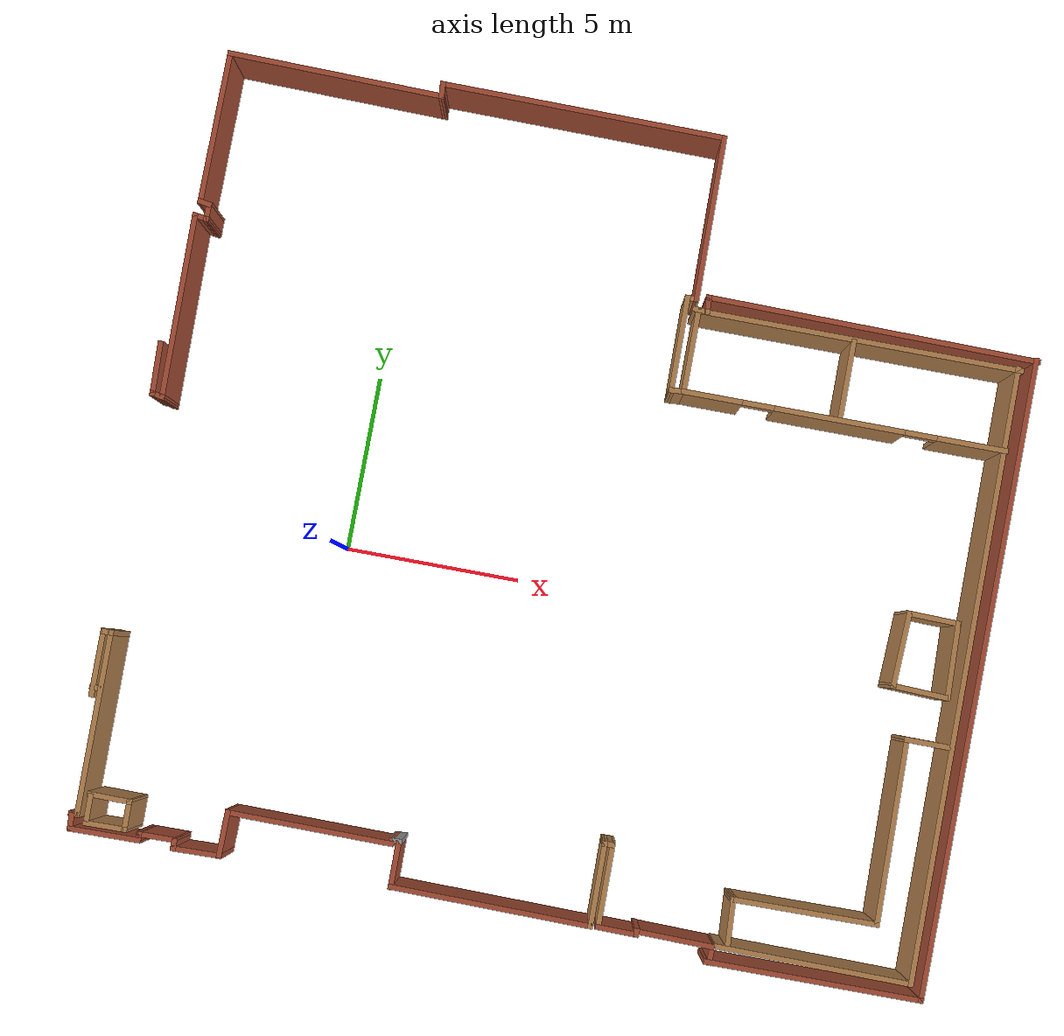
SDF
<sdf version="1.7">
 <world name="empty_world">
  <model name="my_floor">
   <pose>-0.708738 1.92561 0 0 -0 0</pose>
   <link name="Wall_100">
    <collision name="Wall_100_Collision">
     <geometry><box><size>1.2289 0.15 2.5</size></box></geometry>
     <pose>0 0 1.25 0 -0 0</pose>
    </collision>
    <visual name="Wall_100_Visual">
     <pose>0 0 1.25 0 -0 0</pose>
     <geometry><box><size>1.2289 0.15 2.5</size></box></geometry>
     <material>
      <script><uri>file://media/materials/scripts/gazebo.material</uri><name>Gazebo/Wood</name></script>
      <ambient>1 1 1 1</ambient>
     </material>
     <meta><layer>0</layer></meta>
    </visual>
    <pose>-4.18649 -10.7209 0 0 -0 -3.12644</pose>
   </link>
   <link name="Wall_101">
    <collision name="Wall_101_Collision">
     <geometry><box><size>0.895451 0.15 2.5</size></box></geometry>
     <pose>0 0 1.25 0 -0 0</pose>
    </collision>
    <visual name="Wall_101_Visual">
     <pose>0 0 1.25 0 -0 0</pose>
     <geometry><box><size>0.895451 0.15 2.5</size></box></geometry>
     <material>
      <script><uri>file://media/materials/scripts/gazebo.material</uri><name>Gazebo/Wood</name></script>
      <ambient>1 1 1 1</ambient>
     </material>
     <meta><layer>0</layer></meta>
    </visual>
    <pose>-4.73242 -10.3564 0 0 -0 1.58834</pose>
   </link>
   <link name="Wall_103">
    <collision name="Wall_103_Collision">
     <geometry><box><size>5.21545 0.15 2.5</size></box></geometry>
     <pose>0 0 1.25 0 -0 0</pose>
    </collision>
    <visual name="Wall_103_Visual">
     <pose>0 0 1.25 0 -0 0</pose>
     <geometry><box><size>5.21545 0.15 2.5</size></box></geometry>
     <material>
      <script><uri>file://media/materials/scripts/gazebo.material</uri><name>Gazebo/Wood</name></script>
      <ambient>1 1 1 1</ambient>
     </material>
     <meta><layer>0</layer></meta>
    </visual>
    <pose>-5.03494 -8.01189 0 0 -0 1.58124</pose>
   </link>
   <link name="Wall_105">
    <collision name="Wall_105_Collision">
     <geometry><box><size>0.334792 0.15 2.5</size></box></geometry>
     <pose>0 0 1.25 0 -0 0</pose>
    </collision>
    <visual name="Wall_105_Visual">
     <pose>0 0 1.25 0 -0 0</pose>
     <geometry><box><size>0.334792 0.15 2.5</size></box></geometry>
     <material>
      <script><uri>file://media/materials/scripts/gazebo.material</uri><name>Gazebo/Wood</name></script>
      <ambient>1 1 1 1</ambient>
     </material>
     <meta><layer>0</layer></meta>
    </visual>
    <pose>-5.15008 -5.4634 0 0 -0 -3.12621</pose>
   </link>
   <link name="Wall_107">
    <collision name="Wall_107_Collision">
     <geometry><box><size>1.93127 0.15 2.5</size></box></geometry>
     <pose>0 0 1.25 0 -0 0</pose>
    </collision>
    <visual name="Wall_107_Visual">
     <pose>0 0 1.25 0 -0 0</pose>
     <geometry><box><size>1.93127 0.15 2.5</size></box></geometry>
     <material>
      <script><uri>file://media/materials/scripts/gazebo.material</uri><name>Gazebo/Wood</name></script>
      <ambient>1 1 1 1</ambient>
     </material>
     <meta><layer>0</layer></meta>
    </visual>
    <pose>-5.26553 -6.34786 0 0 -0 -1.56109</pose>
   </link>
   <link name="Wall_109">
    <collision name="Wall_109_Collision">
     <geometry><box><size>0.315671 0.15 2.5</size></box></geometry>
     <pose>0 0 1.25 0 -0 0</pose>
    </collision>
    <visual name="Wall_109_Visual">
     <pose>0 0 1.25 0 -0 0</pose>
     <geometry><box><size>0.315671 0.15 2.5</size></box></geometry>
     <material>
      <script><uri>file://media/materials/scripts/gazebo.material</uri><name>Gazebo/Wood</name></script>
      <ambient>1 1 1 1</ambient>
     </material>
     <meta><layer>0</layer></meta>
    </visual>
    <pose>-5.1931 -7.03195 0 0 -0 3.12224</pose>
   </link>
   <link name="Wall_128">
    <collision name="Wall_128_Collision">
     <geometry><box><size>2.23103 0.15 2.5</size></box></geometry>
     <pose>0 0 1.25 0 -0 0</pose>
    </collision>
    <visual name="Wall_128_Visual">
     <pose>0 0 1.25 0 -0 0</pose>
     <geometry><box><size>2.23103 0.15 2.5</size></box></geometry>
     <material>
      <script><uri>file://media/materials/scripts/gazebo.material</uri><name>Gazebo/Wood</name></script>
      <ambient>1 1 1 1</ambient>
     </material>
     <meta><layer>0</layer></meta>
    </visual>
    <pose>17.993 -1.97873 0 0 -0 -1.54139</pose>
   </link>
   <link name="Wall_129">
    <collision name="Wall_129_Collision">
     <geometry><box><size>1.68074 0.15 2.5</size></box></geometry>
     <pose>0 0 1.25 0 -0 0</pose>
    </collision>
    <visual name="Wall_129_Visual">
     <pose>0 0 1.25 0 -0 0</pose>
     <geometry><box><size>1.68074 0.15 2.5</size></box></geometry>
     <material>
      <script><uri>file://media/materials/scripts/gazebo.material</uri><name>Gazebo/Wood</name></script>
      <ambient>1 1 1 1</ambient>
     </material>
     <meta><layer>0</layer></meta>
    </visual>
    <pose>17.2589 -2.98821 0 0 -0 3.10161</pose>
   </link>
   <link name="Wall_130">
    <collision name="Wall_130_Collision">
     <geometry><box><size>2.2016 0.15 2.5</size></box></geometry>
     <pose>0 0 1.25 0 -0 0</pose>
    </collision>
    <visual name="Wall_130_Visual">
     <pose>0 0 1.25 0 -0 0</pose>
     <geometry><box><size>2.2016 0.15 2.5</size></box></geometry>
     <material>
      <script><uri>file://media/materials/scripts/gazebo.material</uri><name>Gazebo/Wood</name></script>
      <ambient>1 1 1 1</ambient>
     </material>
     <meta><layer>0</layer></meta>
    </visual>
    <pose>16.54 -1.93285 0 0 -0 1.52605</pose>
   </link>
   <link name="Wall_131">
    <collision name="Wall_131_Collision">
     <geometry><box><size>1.5269 0.15 2.5</size></box></geometry>
     <pose>0 0 1.25 0 -0 0</pose>
    </collision>
    <visual name="Wall_131_Visual">
     <pose>0 0 1.25 0 -0 0</pose>
     <geometry><box><size>1.5269 0.15 2.5</size></box></geometry>
     <material>
      <script><uri>file://media/materials/scripts/gazebo.material</uri><name>Gazebo/Wood</name></script>
      <ambient>1 1 1 1</ambient>
     </material>
     <meta><layer>0</layer></meta>
    </visual>
    <pose>17.2742 -0.923369 0 0 -0 -0.022219</pose>
   </link>
   <link name="Wall_133">
    <collision name="Wall_133_Collision">
     <geometry><box><size>1.39905 0.15 2.5</size></box></geometry>
     <pose>0 0 1.25 0 -0 0</pose>
    </collision>
    <visual name="Wall_133_Visual">
     <pose>0 0 1.25 0 -0 0</pose>
     <geometry><box><size>1.39905 0.15 2.5</size></box></geometry>
     <material>
      <script><uri>file://media/materials/scripts/gazebo.material</uri><name>Gazebo/Wood</name></script>
      <ambient>1 1 1 1</ambient>
     </material>
     <meta><layer>0</layer></meta>
    </visual>
    <pose>17.7418 -4.35062 0 0 -0 3.14159</pose>
   </link>
   <link name="Wall_134">
    <collision name="Wall_134_Collision">
     <geometry><box><size>5.28546 0.15 2.5</size></box></geometry>
     <pose>0 0 1.25 0 -0 0</pose>
    </collision>
    <visual name="Wall_134_Visual">
     <pose>0 0 1.25 0 -0 0</pose>
     <geometry><box><size>5.28546 0.15 2.5</size></box></geometry>
     <material>
      <script><uri>file://media/materials/scripts/gazebo.material</uri><name>Gazebo/Wood</name></script>
      <ambient>1 1 1 1</ambient>
     </material>
     <meta><layer>0</layer></meta>
    </visual>
    <pose>17.1519 -6.91811 0 0 -0 -1.55728</pose>
   </link>
   <link name="Wall_135">
    <collision name="Wall_135_Collision">
     <geometry><box><size>4.15186 0.15 2.5</size></box></geometry>
     <pose>0 0 1.25 0 -0 0</pose>
    </collision>
    <visual name="Wall_135_Visual">
     <pose>0 0 1.25 0 -0 0</pose>
     <geometry><box><size>4.15186 0.15 2.5</size></box></geometry>
     <material>
      <script><uri>file://media/materials/scripts/gazebo.material</uri><name>Gazebo/Wood</name></script>
      <ambient>1 1 1 1</ambient>
     </material>
     <meta><layer>0</layer></meta>
    </visual>
    <pose>15.1858 -9.50874 0 0 -0 -3.13003</pose>
   </link>
   <link name="Wall_136">
    <collision name="Wall_136_Collision">
     <geometry><box><size>1.42407 0.15 2.5</size></box></geometry>
     <pose>0 0 1.25 0 -0 0</pose>
    </collision>
    <visual name="Wall_136_Visual">
     <pose>0 0 1.25 0 -0 0</pose>
     <geometry><box><size>1.42407 0.15 2.5</size></box></geometry>
     <material>
      <script><uri>file://media/materials/scripts/gazebo.material</uri><name>Gazebo/Wood</name></script>
      <ambient>1 1 1 1</ambient>
     </material>
     <meta><layer>0</layer></meta>
    </visual>
    <pose>13.2197 -10.168 0 0 -0 -1.51631</pose>
   </link>
   <link name="Wall_142">
    <pose>13.8818 4.03162 0 0 -0 0</pose>
    <visual name="Wall_142_Visual_0">
     <pose>-3.75662 0 1.25 0 -0 0</pose>
     <geometry><box><size>1.73677 0.15 2.5</size></box></geometry>
     <material>
      <script><uri>file://media/materials/scripts/gazebo.material</uri><name>Gazebo/Wood</name></script>
      <ambient>1 1 1 1</ambient>
     </material>
     <meta><layer>0</layer></meta>
    </visual>
    <collision name="Wall_142_Collision_0">
     <geometry><box><size>1.73677 0.15 2.5</size></box></geometry>
     <pose>-3.75662 0 1.25 0 -0 0</pose>
    </collision>
    <visual name="Wall_142_Visual_1">
     <pose>-0.137622 0 1.25 0 -0 0</pose>
     <geometry><box><size>3.70121 0.15 2.5</size></box></geometry>
     <material>
      <script><uri>file://media/materials/scripts/gazebo.material</uri><name>Gazebo/Wood</name></script>
      <ambient>1 1 1 1</ambient>
     </material>
     <meta><layer>0</layer></meta>
    </visual>
    <collision name="Wall_142_Collision_1">
     <geometry><box><size>3.70121 0.15 2.5</size></box></geometry>
     <pose>-0.137622 0 1.25 0 -0 0</pose>
    </collision>
    <visual name="Wall_142_Visual_2">
     <pose>3.61899 0 1.25 0 -0 0</pose>
     <geometry><box><size>2.01201 0.15 2.5</size></box></geometry>
     <material>
      <script><uri>file://media/materials/scripts/gazebo.material</uri><name>Gazebo/Wood</name></script>
      <ambient>1 1 1 1</ambient>
     </material>
     <meta><layer>0</layer></meta>
    </visual>
    <collision name="Wall_142_Collision_2">
     <geometry><box><size>2.01201 0.15 2.5</size></box></geometry>
     <pose>3.61899 0 1.25 0 -0 0</pose>
    </collision>
    <visual name="Wall_142_Visual_3">
     <pose>-2.43823 0 2.25 0 -0 0</pose>
     <geometry><box><size>0.9 0.15 0.5</size></box></geometry>
     <material>
      <script><uri>file://media/materials/scripts/gazebo.material</uri><name>Gazebo/Wood</name></script>
      <ambient>1 1 1 1</ambient>
     </material>
     <meta><layer>0</layer></meta>
    </visual>
    <collision name="Wall_142_Collision_3">
     <geometry><box><size>0.9 0.15 0.5</size></box></geometry>
     <pose>-2.43823 0 2.25 0 -0 0</pose>
    </collision>
    <visual name="Wall_142_Visual_4">
     <pose>2.16298 0 2.25 0 -0 0</pose>
     <geometry><box><size>0.9 0.15 0.5</size></box></geometry>
     <material>
      <script><uri>file://media/materials/scripts/gazebo.material</uri><name>Gazebo/Wood</name></script>
      <ambient>1 1 1 1</ambient>
     </material>
     <meta><layer>0</layer></meta>
    </visual>
    <collision name="Wall_142_Collision_4">
     <geometry><box><size>0.9 0.15 0.5</size></box></geometry>
     <pose>2.16298 0 2.25 0 -0 0</pose>
    </collision>
   </link>
   <link name="Wall_144">
    <collision name="Wall_144_Collision">
     <geometry><box><size>2.25 0.15 2.5</size></box></geometry>
     <pose>0 0 1.25 0 -0 0</pose>
    </collision>
    <visual name="Wall_144_Visual">
     <pose>0 0 1.25 0 -0 0</pose>
     <geometry><box><size>2.25 0.15 2.5</size></box></geometry>
     <material>
      <script><uri>file://media/materials/scripts/gazebo.material</uri><name>Gazebo/Wood</name></script>
      <ambient>1 1 1 1</ambient>
     </material>
     <meta><layer>0</layer></meta>
    </visual>
    <pose>13.7442 5.22429 0 0 -0 1.5708</pose>
   </link>
   <link name="Wall_39">
    <collision name="Wall_39_Collision">
     <geometry><box><size>1.56173 0.15 2.5</size></box></geometry>
     <pose>0 0 1.25 0 -0 0</pose>
    </collision>
    <visual name="Wall_39_Visual">
     <pose>0 0 1.25 0 -0 0</pose>
     <geometry><box><size>1.56173 0.15 2.5</size></box></geometry>
     <material>
      <script><uri>file://media/materials/scripts/gazebo.material</uri><name>Gazebo/Bricks</name></script>
      <ambient>1 1 1 1</ambient>
     </material>
     <meta><layer>0</layer></meta>
    </visual>
    <pose>-5.24049 1.98456 0 0 -0 -1.53802</pose>
   </link>
   <link name="Wall_40">
    <collision name="Wall_40_Collision">
     <geometry><box><size>0.431396 0.15 2.5</size></box></geometry>
     <pose>0 0 1.25 0 -0 0</pose>
    </collision>
    <visual name="Wall_40_Visual">
     <pose>0 0 1.25 0 -0 0</pose>
     <geometry><box><size>0.431396 0.15 2.5</size></box></geometry>
     <material>
      <script><uri>file://media/materials/scripts/gazebo.material</uri><name>Gazebo/Bricks</name></script>
      <ambient>1 1 1 1</ambient>
     </material>
     <meta><layer>0</layer></meta>
    </visual>
    <pose>-5.07858 1.25595 0 0 -0 -0.165149</pose>
   </link>
   <link name="Wall_41">
    <collision name="Wall_41_Collision">
     <geometry><box><size>5.33172 0.15 2.5</size></box></geometry>
     <pose>0 0 1.25 0 -0 0</pose>
    </collision>
    <visual name="Wall_41_Visual">
     <pose>0 0 1.25 0 -0 0</pose>
     <geometry><box><size>5.33172 0.15 2.5</size></box></geometry>
     <material>
      <script><uri>file://media/materials/scripts/gazebo.material</uri><name>Gazebo/Bricks</name></script>
      <ambient>1 1 1 1</ambient>
     </material>
     <meta><layer>0</layer></meta>
    </visual>
    <pose>-4.97449 3.82345 0 0 -0 1.58419</pose>
   </link>
   <link name="Wall_42">
    <collision name="Wall_42_Collision">
     <geometry><box><size>0.477116 0.15 2.5</size></box></geometry>
     <pose>0 0 1.25 0 -0 0</pose>
    </collision>
    <visual name="Wall_42_Visual">
     <pose>0 0 1.25 0 -0 0</pose>
     <geometry><box><size>0.477116 0.15 2.5</size></box></geometry>
     <material>
      <script><uri>file://media/materials/scripts/gazebo.material</uri><name>Gazebo/Bricks</name></script>
      <ambient>1 1 1 1</ambient>
     </material>
     <meta><layer>0</layer></meta>
    </visual>
    <pose>-4.84727 6.39094 0 0 -0 -0.141897</pose>
   </link>
   <link name="Wall_43">
    <collision name="Wall_43_Collision">
     <geometry><box><size>0.566351 0.15 2.5</size></box></geometry>
     <pose>0 0 1.25 0 -0 0</pose>
    </collision>
    <visual name="Wall_43_Visual">
     <pose>0 0 1.25 0 -0 0</pose>
     <geometry><box><size>0.566351 0.15 2.5</size></box></geometry>
     <material>
      <script><uri>file://media/materials/scripts/gazebo.material</uri><name>Gazebo/Bricks</name></script>
      <ambient>1 1 1 1</ambient>
     </material>
     <meta><layer>0</layer></meta>
    </visual>
    <pose>-4.68536 6.57599 0 0 -0 1.5708</pose>
   </link>
   <link name="Wall_44">
    <collision name="Wall_44_Collision">
     <geometry><box><size>0.408608 0.15 2.5</size></box></geometry>
     <pose>0 0 1.25 0 -0 0</pose>
    </collision>
    <visual name="Wall_44_Visual">
     <pose>0 0 1.25 0 -0 0</pose>
     <geometry><box><size>0.408608 0.15 2.5</size></box></geometry>
     <material>
      <script><uri>file://media/materials/scripts/gazebo.material</uri><name>Gazebo/Bricks</name></script>
      <ambient>1 1 1 1</ambient>
     </material>
     <meta><layer>0</layer></meta>
    </visual>
    <pose>-4.81258 6.80729 0 0 -0 2.96174</pose>
   </link>
   <link name="Wall_45">
    <collision name="Wall_45_Collision">
     <geometry><box><size>4.42922 0.15 2.5</size></box></geometry>
     <pose>0 0 1.25 0 -0 0</pose>
    </collision>
    <visual name="Wall_45_Visual">
     <pose>0 0 1.25 0 -0 0</pose>
     <geometry><box><size>4.42922 0.15 2.5</size></box></geometry>
     <material>
      <script><uri>file://media/materials/scripts/gazebo.material</uri><name>Gazebo/Bricks</name></script>
      <ambient>1 1 1 1</ambient>
     </material>
     <meta><layer>0</layer></meta>
    </visual>
    <pose>-4.92823 8.97001 0 0 -0 1.56539</pose>
   </link>
   <link name="Wall_46">
    <collision name="Wall_46_Collision">
     <geometry><box><size>6.21132 0.15 2.5</size></box></geometry>
     <pose>0 0 1.25 0 -0 0</pose>
    </collision>
    <visual name="Wall_46_Visual">
     <pose>0 0 1.25 0 -0 0</pose>
     <geometry><box><size>6.21132 0.15 2.5</size></box></geometry>
     <material>
      <script><uri>file://media/materials/scripts/gazebo.material</uri><name>Gazebo/Bricks</name></script>
      <ambient>1 1 1 1</ambient>
     </material>
     <meta><layer>0</layer></meta>
    </visual>
    <pose>-1.88655 11.0518 0 0 -0 -0.019082</pose>
   </link>
   <link name="Wall_47">
    <collision name="Wall_47_Collision">
     <geometry><box><size>0.497729 0.15 2.5</size></box></geometry>
     <pose>0 0 1.25 0 -0 0</pose>
    </collision>
    <visual name="Wall_47_Visual">
     <pose>0 0 1.25 0 -0 0</pose>
     <geometry><box><size>0.497729 0.15 2.5</size></box></geometry>
     <material>
      <script><uri>file://media/materials/scripts/gazebo.material</uri><name>Gazebo/Bricks</name></script>
      <ambient>1 1 1 1</ambient>
     </material>
     <meta><layer>0</layer></meta>
    </visual>
    <pose>1.13199 11.1674 0 0 -0 1.63736</pose>
   </link>
   <link name="Wall_48">
    <collision name="Wall_48_Collision">
     <geometry><box><size>8.19998 0.15 2.5</size></box></geometry>
     <pose>0 0 1.25 0 -0 0</pose>
    </collision>
    <visual name="Wall_48_Visual">
     <pose>0 0 1.25 0 -0 0</pose>
     <geometry><box><size>8.19998 0.15 2.5</size></box></geometry>
     <material>
      <script><uri>file://media/materials/scripts/gazebo.material</uri><name>Gazebo/Bricks</name></script>
      <ambient>1 1 1 1</ambient>
     </material>
     <meta><layer>0</layer></meta>
    </visual>
    <pose>5.14515 11.3062 0 0 -0 -0.00862</pose>
   </link>
   <link name="Wall_49">
    <collision name="Wall_49_Collision">
     <geometry><box><size>4.77635 0.15 2.5</size></box></geometry>
     <pose>0 0 1.25 0 -0 0</pose>
    </collision>
    <visual name="Wall_49_Visual">
     <pose>0 0 1.25 0 -0 0</pose>
     <geometry><box><size>4.77635 0.15 2.5</size></box></geometry>
     <material>
      <script><uri>file://media/materials/scripts/gazebo.material</uri><name>Gazebo/Bricks</name></script>
      <ambient>1 1 1 1</ambient>
     </material>
     <meta><layer>0</layer></meta>
    </visual>
    <pose>9.19301 8.95844 0 0 -0 -1.5608</pose>
   </link>
   <link name="Wall_50">
    <collision name="Wall_50_Collision">
     <geometry><box><size>0.404437 0.15 2.5</size></box></geometry>
     <pose>0 0 1.25 0 -0 0</pose>
    </collision>
    <visual name="Wall_50_Visual">
     <pose>0 0 1.25 0 -0 0</pose>
     <geometry><box><size>0.404437 0.15 2.5</size></box></geometry>
     <material>
      <script><uri>file://media/materials/scripts/gazebo.material</uri><name>Gazebo/Wood</name></script>
      <ambient>1 1 1 1</ambient>
     </material>
     <meta><layer>0</layer></meta>
    </visual>
    <pose>9.08892 6.64538 0 0 -0 3.14159</pose>
   </link>
   <link name="Wall_51">
    <collision name="Wall_51_Collision">
     <geometry><box><size>2.78699 0.15 2.5</size></box></geometry>
     <pose>0 0 1.25 0 -0 0</pose>
    </collision>
    <visual name="Wall_51_Visual">
     <pose>0 0 1.25 0 -0 0</pose>
     <geometry><box><size>2.78699 0.15 2.5</size></box></geometry>
     <material>
      <script><uri>file://media/materials/scripts/gazebo.material</uri><name>Gazebo/Wood</name></script>
      <ambient>1 1 1 1</ambient>
     </material>
     <meta><layer>0</layer></meta>
    </visual>
    <pose>8.97327 5.32694 0 0 -0 -1.56202</pose>
   </link>
   <link name="Wall_52">
    <collision name="Wall_52_Collision">
     <geometry><box><size>0.497729 0.15 2.5</size></box></geometry>
     <pose>0 0 1.25 0 -0 0</pose>
    </collision>
    <visual name="Wall_52_Visual">
     <pose>0 0 1.25 0 -0 0</pose>
     <geometry><box><size>0.497729 0.15 2.5</size></box></geometry>
     <material>
      <script><uri>file://media/materials/scripts/gazebo.material</uri><name>Gazebo/Wood</name></script>
      <ambient>1 1 1 1</ambient>
     </material>
     <meta><layer>0</layer></meta>
    </visual>
    <pose>9.15831 4.02006 0 0 -0 0.066568</pose>
   </link>
   <link name="Wall_53">
    <collision name="Wall_53_Collision">
     <geometry><box><size>2.48619 0.15 2.5</size></box></geometry>
     <pose>0 0 1.25 0 -0 0</pose>
    </collision>
    <visual name="Wall_53_Visual">
     <pose>0 0 1.25 0 -0 0</pose>
     <geometry><box><size>2.48619 0.15 2.5</size></box></geometry>
     <material>
      <script><uri>file://media/materials/scripts/gazebo.material</uri><name>Gazebo/Wood</name></script>
      <ambient>1 1 1 1</ambient>
     </material>
     <meta><layer>0</layer></meta>
    </visual>
    <pose>9.33179 5.19972 0 0 -0 1.5708</pose>
   </link>
   <link name="Wall_55">
    <collision name="Wall_55_Collision">
     <geometry><box><size>0.482771 0.15 2.5</size></box></geometry>
     <pose>0 0 1.25 0 -0 0</pose>
    </collision>
    <visual name="Wall_55_Visual">
     <pose>0 0 1.25 0 -0 0</pose>
     <geometry><box><size>0.482771 0.15 2.5</size></box></geometry>
     <material>
      <script><uri>file://media/materials/scripts/gazebo.material</uri><name>Gazebo/Wood</name></script>
      <ambient>1 1 1 1</ambient>
     </material>
     <meta><layer>0</layer></meta>
    </visual>
    <pose>9.40197 6.36454 0 0 -0 -0.052583</pose>
   </link>
   <link name="Wall_56">
    <collision name="Wall_56_Collision">
     <geometry><box><size>0.552651 0.15 2.5</size></box></geometry>
     <pose>0 0 1.25 0 -0 0</pose>
    </collision>
    <visual name="Wall_56_Visual">
     <pose>0 0 1.25 0 -0 0</pose>
     <geometry><box><size>0.552651 0.15 2.5</size></box></geometry>
     <material>
      <script><uri>file://media/materials/scripts/gazebo.material</uri><name>Gazebo/Bricks</name></script>
      <ambient>1 1 1 1</ambient>
     </material>
     <meta><layer>0</layer></meta>
    </visual>
    <pose>9.55938 6.55693 0 0 -0 1.61425</pose>
   </link>
   <link name="Wall_57">
    <collision name="Wall_57_Collision">
     <geometry><box><size>9.49028 0.15 2.5</size></box></geometry>
     <pose>0 0 1.25 0 -0 0</pose>
    </collision>
    <visual name="Wall_57_Visual">
     <pose>0 0 1.25 0 -0 0</pose>
     <geometry><box><size>9.49028 0.15 2.5</size></box></geometry>
     <material>
      <script><uri>file://media/materials/scripts/gazebo.material</uri><name>Gazebo/Bricks</name></script>
      <ambient>1 1 1 1</ambient>
     </material>
     <meta><layer>0</layer></meta>
    </visual>
    <pose>14.2205 6.70559 0 0 -0 -0.011235</pose>
   </link>
   <link name="Wall_59">
    <collision name="Wall_59_Collision">
     <geometry><box><size>9.22736 0.15 2.5</size></box></geometry>
     <pose>0 0 1.25 0 -0 0</pose>
    </collision>
    <visual name="Wall_59_Visual">
     <pose>0 0 1.25 0 -0 0</pose>
     <geometry><box><size>9.22736 0.15 2.5</size></box></geometry>
     <material>
      <script><uri>file://media/materials/scripts/gazebo.material</uri><name>Gazebo/Wood</name></script>
      <ambient>1 1 1 1</ambient>
     </material>
     <meta><layer>0</layer></meta>
    </visual>
    <pose>13.9319 6.32956 0 0 -0 -0.001927</pose>
   </link>
   <link name="Wall_61">
    <collision name="Wall_61_Collision">
     <geometry><box><size>17.4228 0.15 2.5</size></box></geometry>
     <pose>0 0 1.25 0 -0 0</pose>
    </collision>
    <visual name="Wall_61_Visual">
     <pose>0 0 1.25 0 -0 0</pose>
     <geometry><box><size>17.4228 0.15 2.5</size></box></geometry>
     <material>
      <script><uri>file://media/materials/scripts/gazebo.material</uri><name>Gazebo/Wood</name></script>
      <ambient>1 1 1 1</ambient>
     </material>
     <meta><layer>0</layer></meta>
    </visual>
    <pose>18.3865 -2.27695 0 0 -0 -1.5708</pose>
   </link>
   <link name="Wall_62">
    <collision name="Wall_62_Collision">
     <geometry><box><size>5.56764 0.15 2.5</size></box></geometry>
     <pose>0 0 1.25 0 -0 0</pose>
    </collision>
    <visual name="Wall_62_Visual">
     <pose>0 0 1.25 0 -0 0</pose>
     <geometry><box><size>5.56764 0.15 2.5</size></box></geometry>
     <material>
      <script><uri>file://media/materials/scripts/gazebo.material</uri><name>Gazebo/Wood</name></script>
      <ambient>1 1 1 1</ambient>
     </material>
     <meta><layer>0</layer></meta>
    </visual>
    <pose>15.6777 -10.8957 0 0 -0 3.1351</pose>
   </link>
   <link name="Wall_64">
    <collision name="Wall_64_Collision">
     <geometry><box><size>18.1267 0.15 2.5</size></box></geometry>
     <pose>0 0 1.25 0 -0 0</pose>
    </collision>
    <visual name="Wall_64_Visual">
     <pose>0 0 1.25 0 -0 0</pose>
     <geometry><box><size>18.1267 0.15 2.5</size></box></geometry>
     <material>
      <script><uri>file://media/materials/scripts/gazebo.material</uri><name>Gazebo/Bricks</name></script>
      <ambient>1 1 1 1</ambient>
     </material>
     <meta><layer>0</layer></meta>
    </visual>
    <pose>18.7911 -2.31213 0 0 -0 -1.57667</pose>
   </link>
   <link name="Wall_65">
    <collision name="Wall_65_Collision">
     <geometry><box><size>6.13049 0.15 2.5</size></box></geometry>
     <pose>0 0 1.25 0 -0 0</pose>
    </collision>
    <visual name="Wall_65_Visual">
     <pose>0 0 1.25 0 -0 0</pose>
     <geometry><box><size>6.13049 0.15 2.5</size></box></geometry>
     <material>
      <script><uri>file://media/materials/scripts/gazebo.material</uri><name>Gazebo/Bricks</name></script>
      <ambient>1 1 1 1</ambient>
     </material>
     <meta><layer>0</layer></meta>
    </visual>
    <pose>15.7481 -11.3179 0 0 -0 -3.13571</pose>
   </link>
   <link name="Wall_70">
    <collision name="Wall_70_Collision">
     <geometry><box><size>0.587544 0.15 2.5</size></box></geometry>
     <pose>0 0 1.25 0 -0 0</pose>
    </collision>
    <visual name="Wall_70_Visual">
     <pose>0 0 1.25 0 -0 0</pose>
     <geometry><box><size>0.587544 0.15 2.5</size></box></geometry>
     <material>
      <script><uri>file://media/materials/scripts/gazebo.material</uri><name>Gazebo/Bricks</name></script>
      <ambient>1 1 1 1</ambient>
     </material>
     <meta><layer>0</layer></meta>
    </visual>
    <pose>12.8437 -11.1261 0 0 -0 1.58216</pose>
   </link>
   <link name="Wall_71">
    <collision name="Wall_71_Collision">
     <geometry><box><size>2.23346 0.15 2.5</size></box></geometry>
     <pose>0 0 1.25 0 -0 0</pose>
    </collision>
    <visual name="Wall_71_Visual">
     <pose>0 0 1.25 0 -0 0</pose>
     <geometry><box><size>2.23346 0.15 2.5</size></box></geometry>
     <material>
      <script><uri>file://media/materials/scripts/gazebo.material</uri><name>Gazebo/Bricks</name></script>
      <ambient>1 1 1 1</ambient>
     </material>
     <meta><layer>0</layer></meta>
    </visual>
    <pose>11.7996 -10.89 0 0 -0 3.12489</pose>
   </link>
   <link name="Wall_73">
    <collision name="Wall_73_Collision">
     <geometry><box><size>0.252509 0.15 2.5</size></box></geometry>
     <pose>0 0 1.25 0 -0 0</pose>
    </collision>
    <visual name="Wall_73_Visual">
     <pose>0 0 1.25 0 -0 0</pose>
     <geometry><box><size>0.252509 0.15 2.5</size></box></geometry>
     <material>
      <script><uri>file://media/materials/scripts/gazebo.material</uri><name>Gazebo/Bricks</name></script>
      <ambient>1 1 1 1</ambient>
     </material>
     <meta><layer>0</layer></meta>
    </visual>
    <pose>10.7324 -10.9119 0 0 -0 -1.52321</pose>
   </link>
   <link name="Wall_74">
    <collision name="Wall_74_Collision">
     <geometry><box><size>1.22112 0.15 2.5</size></box></geometry>
     <pose>0 0 1.25 0 -0 0</pose>
    </collision>
    <visual name="Wall_74_Visual">
     <pose>0 0 1.25 0 -0 0</pose>
     <geometry><box><size>1.22112 0.15 2.5</size></box></geometry>
     <material>
      <script><uri>file://media/materials/scripts/gazebo.material</uri><name>Gazebo/Bricks</name></script>
      <ambient>1 1 1 1</ambient>
     </material>
     <meta><layer>0</layer></meta>
    </visual>
    <pose>10.1993 -10.9574 0 0 -0 3.13097</pose>
   </link>
   <link name="Wall_76">
    <collision name="Wall_76_Collision">
     <geometry><box><size>2.40532 0.15 2.5</size></box></geometry>
     <pose>0 0 1.25 0 -0 0</pose>
    </collision>
    <visual name="Wall_76_Visual">
     <pose>0 0 1.25 0 -0 0</pose>
     <geometry><box><size>2.40532 0.15 2.5</size></box></geometry>
     <material>
      <script><uri>file://media/materials/scripts/gazebo.material</uri><name>Gazebo/Wood</name></script>
      <ambient>1 1 1 1</ambient>
     </material>
     <meta><layer>0</layer></meta>
    </visual>
    <pose>9.66108 -9.80033 0 0 -0 1.57663</pose>
   </link>
   <link name="Wall_77">
    <collision name="Wall_77_Collision">
     <geometry><box><size>0.36698 0.15 2.5</size></box></geometry>
     <pose>0 0 1.25 0 -0 0</pose>
    </collision>
    <visual name="Wall_77_Visual">
     <pose>0 0 1.25 0 -0 0</pose>
     <geometry><box><size>0.36698 0.15 2.5</size></box></geometry>
     <material>
      <script><uri>file://media/materials/scripts/gazebo.material</uri><name>Gazebo/Wood</name></script>
      <ambient>1 1 1 1</ambient>
     </material>
     <meta><layer>0</layer></meta>
    </visual>
    <pose>9.54601 -8.67269 0 0 -0 3.14159</pose>
   </link>
   <link name="Wall_78">
    <collision name="Wall_78_Collision">
     <geometry><box><size>2.44488 0.15 2.5</size></box></geometry>
     <pose>0 0 1.25 0 -0 0</pose>
    </collision>
    <visual name="Wall_78_Visual">
     <pose>0 0 1.25 0 -0 0</pose>
     <geometry><box><size>2.44488 0.15 2.5</size></box></geometry>
     <material>
      <script><uri>file://media/materials/scripts/gazebo.material</uri><name>Gazebo/Wood</name></script>
      <ambient>1 1 1 1</ambient>
     </material>
     <meta><layer>0</layer></meta>
    </visual>
    <pose>9.44739 -9.82005 0 0 -0 -1.5622</pose>
   </link>
   <link name="Wall_80">
    <collision name="Wall_80_Collision">
     <geometry><box><size>5.73278 0.15 2.5</size></box></geometry>
     <pose>0 0 1.25 0 -0 0</pose>
    </collision>
    <visual name="Wall_80_Visual">
     <pose>0 0 1.25 0 -0 0</pose>
     <geometry><box><size>5.73278 0.15 2.5</size></box></geometry>
     <material>
      <script><uri>file://media/materials/scripts/gazebo.material</uri><name>Gazebo/Bricks</name></script>
      <ambient>1 1 1 1</ambient>
     </material>
     <meta><layer>0</layer></meta>
    </visual>
    <pose>6.65071 -10.942 0 0 -0 3.13202</pose>
   </link>
   <link name="Wall_81">
    <collision name="Wall_81_Collision">
     <geometry><box><size>1.38481 0.15 2.5</size></box></geometry>
     <pose>0 0 1.25 0 -0 0</pose>
    </collision>
    <visual name="Wall_81_Visual">
     <pose>0 0 1.25 0 -0 0</pose>
     <geometry><box><size>1.38481 0.15 2.5</size></box></geometry>
     <material>
      <script><uri>file://media/materials/scripts/gazebo.material</uri><name>Gazebo/Bricks</name></script>
      <ambient>1 1 1 1</ambient>
     </material>
     <meta><layer>0</layer></meta>
    </visual>
    <pose>3.85505 -10.3029 0 0 -0 1.57784</pose>
   </link>
   <link name="Wall_83">
    <collision name="Wall_83_Collision">
     <geometry><box><size>0.362237 0.15 2.5</size></box></geometry>
     <pose>0 0 1.25 0 -0 0</pose>
    </collision>
    <visual name="Wall_83_Visual">
     <pose>0 0 1.25 0 -0 0</pose>
     <geometry><box><size>0.362237 0.15 2.5</size></box></geometry>
     <material>
      <script><uri>file://media/materials/scripts/gazebo.material</uri><name>Gazebo/Grey</name></script>
      <ambient>1 1 1 1</ambient>
     </material>
     <meta><layer>0</layer></meta>
    </visual>
    <pose>3.75599 -9.65956 0 0 -0 -3.1008</pose>
   </link>
   <link name="Wall_84">
    <collision name="Wall_84_Collision">
     <geometry><box><size>0.2412 0.15 2.5</size></box></geometry>
     <pose>0 0 1.25 0 -0 0</pose>
    </collision>
    <visual name="Wall_84_Visual">
     <pose>0 0 1.25 0 -0 0</pose>
     <geometry><box><size>0.2412 0.15 2.5</size></box></geometry>
     <material>
      <script><uri>file://media/materials/scripts/gazebo.material</uri><name>Gazebo/Bricks</name></script>
      <ambient>1 1 1 1</ambient>
     </material>
     <meta><layer>0</layer></meta>
    </visual>
    <pose>3.65223 -9.70928 0 0 -0 -1.52321</pose>
   </link>
   <link name="Wall_85">
    <collision name="Wall_85_Collision">
     <geometry><box><size>4.74137 0.15 2.5</size></box></geometry>
     <pose>0 0 1.25 0 -0 0</pose>
    </collision>
    <visual name="Wall_85_Visual">
     <pose>0 0 1.25 0 -0 0</pose>
     <geometry><box><size>4.74137 0.15 2.5</size></box></geometry>
     <material>
      <script><uri>file://media/materials/scripts/gazebo.material</uri><name>Gazebo/Bricks</name></script>
      <ambient>1 1 1 1</ambient>
     </material>
     <meta><layer>0</layer></meta>
    </visual>
    <pose>1.35873 -9.74386 0 0 -0 3.13688</pose>
   </link>
   <link name="Wall_86">
    <collision name="Wall_86_Collision">
     <geometry><box><size>1.36491 0.15 2.5</size></box></geometry>
     <pose>0 0 1.25 0 -0 0</pose>
    </collision>
    <visual name="Wall_86_Visual">
     <pose>0 0 1.25 0 -0 0</pose>
     <geometry><box><size>1.36491 0.15 2.5</size></box></geometry>
     <material>
      <script><uri>file://media/materials/scripts/gazebo.material</uri><name>Gazebo/Bricks</name></script>
      <ambient>1 1 1 1</ambient>
     </material>
     <meta><layer>0</layer></meta>
    </visual>
    <pose>-0.943411 -10.3405 0 0 -0 -1.58147</pose>
   </link>
   <link name="Wall_88">
    <collision name="Wall_88_Collision">
     <geometry><box><size>1.43319 0.15 2.5</size></box></geometry>
     <pose>0 0 1.25 0 -0 0</pose>
    </collision>
    <visual name="Wall_88_Visual">
     <pose>0 0 1.25 0 -0 0</pose>
     <geometry><box><size>1.43319 0.15 2.5</size></box></geometry>
     <material>
      <script><uri>file://media/materials/scripts/gazebo.material</uri><name>Gazebo/Bricks</name></script>
      <ambient>1 1 1 1</ambient>
     </material>
     <meta><layer>0</layer></meta>
    </visual>
    <pose>-1.5851 -10.9592 0 0 -0 -3.11447</pose>
   </link>
   <link name="Wall_89">
    <collision name="Wall_89_Collision">
     <geometry><box><size>0.378917 0.15 2.5</size></box></geometry>
     <pose>0 0 1.25 0 -0 0</pose>
    </collision>
    <visual name="Wall_89_Visual">
     <pose>0 0 1.25 0 -0 0</pose>
     <geometry><box><size>0.378917 0.15 2.5</size></box></geometry>
     <material>
      <script><uri>file://media/materials/scripts/gazebo.material</uri><name>Gazebo/Bricks</name></script>
      <ambient>1 1 1 1</ambient>
     </material>
     <meta><layer>0</layer></meta>
    </visual>
    <pose>-2.23143 -10.8623 0 0 -0 1.61425</pose>
   </link>
   <link name="Wall_90">
    <collision name="Wall_90_Collision">
     <geometry><box><size>1.13943 0.15 2.5</size></box></geometry>
     <pose>0 0 1.25 0 -0 0</pose>
    </collision>
    <visual name="Wall_90_Visual">
     <pose>0 0 1.25 0 -0 0</pose>
     <geometry><box><size>1.13943 0.15 2.5</size></box></geometry>
     <material>
      <script><uri>file://media/materials/scripts/gazebo.material</uri><name>Gazebo/Bricks</name></script>
      <ambient>1 1 1 1</ambient>
     </material>
     <meta><layer>0</layer></meta>
    </visual>
    <pose>-2.73109 -10.7529 0 0 -0 -3.13154</pose>
   </link>
   <link name="Wall_91">
    <collision name="Wall_91_Collision">
     <geometry><box><size>0.324296 0.15 2.5</size></box></geometry>
     <pose>0 0 1.25 0 -0 0</pose>
    </collision>
    <visual name="Wall_91_Visual">
     <pose>0 0 1.25 0 -0 0</pose>
     <geometry><box><size>0.324296 0.15 2.5</size></box></geometry>
     <material>
      <script><uri>file://media/materials/scripts/gazebo.material</uri><name>Gazebo/Bricks</name></script>
      <ambient>1 1 1 1</ambient>
     </material>
     <meta><layer>0</layer></meta>
    </visual>
    <pose>-3.22081 -10.8449 0 0 -0 -1.51372</pose>
   </link>
   <link name="Wall_92">
    <collision name="Wall_92_Collision">
     <geometry><box><size>2.06436 0.15 2.5</size></box></geometry>
     <pose>0 0 1.25 0 -0 0</pose>
    </collision>
    <visual name="Wall_92_Visual">
     <pose>0 0 1.25 0 -0 0</pose>
     <geometry><box><size>2.06436 0.15 2.5</size></box></geometry>
     <material>
      <script><uri>file://media/materials/scripts/gazebo.material</uri><name>Gazebo/Bricks</name></script>
      <ambient>1 1 1 1</ambient>
     </material>
     <meta><layer>0</layer></meta>
    </visual>
    <pose>-4.1729 -10.9468 0 0 -0 -3.12601</pose>
   </link>
   <link name="Wall_93">
    <collision name="Wall_93_Collision">
     <geometry><box><size>0.518448 0.15 2.5</size></box></geometry>
     <pose>0 0 1.25 0 -0 0</pose>
    </collision>
    <visual name="Wall_93_Visual">
     <pose>0 0 1.25 0 -0 0</pose>
     <geometry><box><size>0.518448 0.15 2.5</size></box></geometry>
     <material>
      <script><uri>file://media/materials/scripts/gazebo.material</uri><name>Gazebo/Bricks</name></script>
      <ambient>1 1 1 1</ambient>
     </material>
     <meta><layer>0</layer></meta>
    </visual>
    <pose>-5.13991 -10.7778 0 0 -0 1.6248</pose>
   </link>
   <link name="Wall_95">
    <collision name="Wall_95_Collision">
     <geometry><box><size>0.26459 0.15 2.5</size></box></geometry>
     <pose>0 0 1.25 0 -0 0</pose>
    </collision>
    <visual name="Wall_95_Visual">
     <pose>0 0 1.25 0 -0 0</pose>
     <geometry><box><size>0.26459 0.15 2.5</size></box></geometry>
     <material>
      <script><uri>file://media/materials/scripts/gazebo.material</uri><name>Gazebo/Bricks</name></script>
      <ambient>1 1 1 1</ambient>
     </material>
     <meta><layer>0</layer></meta>
    </visual>
    <pose>-5.1179 -10.5556 0 0 -0 0.024995</pose>
   </link>
   <link name="Wall_98">
    <collision name="Wall_98_Collision">
     <geometry><box><size>1.26148 0.15 2.5</size></box></geometry>
     <pose>0 0 1.25 0 -0 0</pose>
    </collision>
    <visual name="Wall_98_Visual">
     <pose>0 0 1.25 0 -0 0</pose>
     <geometry><box><size>1.26148 0.15 2.5</size></box></geometry>
     <material>
      <script><uri>file://media/materials/scripts/gazebo.material</uri><name>Gazebo/Wood</name></script>
      <ambient>1 1 1 1</ambient>
     </material>
     <meta><layer>0</layer></meta>
    </visual>
    <pose>-4.21265 -9.93797 0 0 -0 -0.005882</pose>
   </link>
   <link name="Wall_99">
    <collision name="Wall_99_Collision">
     <geometry><box><size>0.921551 0.15 2.5</size></box></geometry>
     <pose>0 0 1.25 0 -0 0</pose>
    </collision>
    <visual name="Wall_99_Visual">
     <pose>0 0 1.25 0 -0 0</pose>
     <geometry><box><size>0.921551 0.15 2.5</size></box></geometry>
     <material>
      <script><uri>file://media/materials/scripts/gazebo.material</uri><name>Gazebo/Wood</name></script>
      <ambient>1 1 1 1</ambient>
     </material>
     <meta><layer>0</layer></meta>
    </visual>
    <pose>-3.65201 -10.327 0 0 -0 -1.55808</pose>
   </link>
   <static>1</static>
  </model>
 </world>
</sdf>
